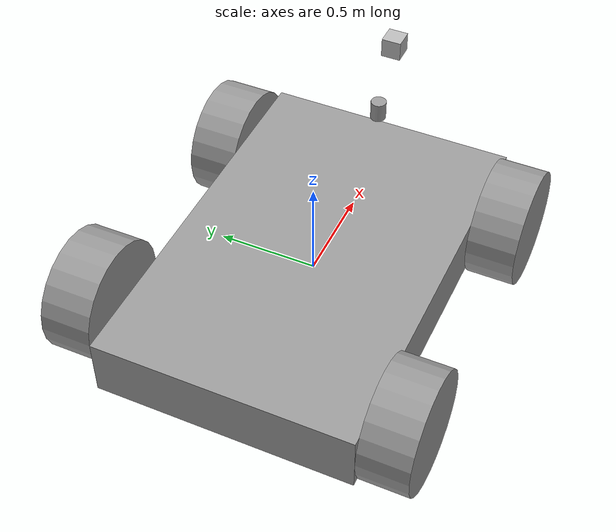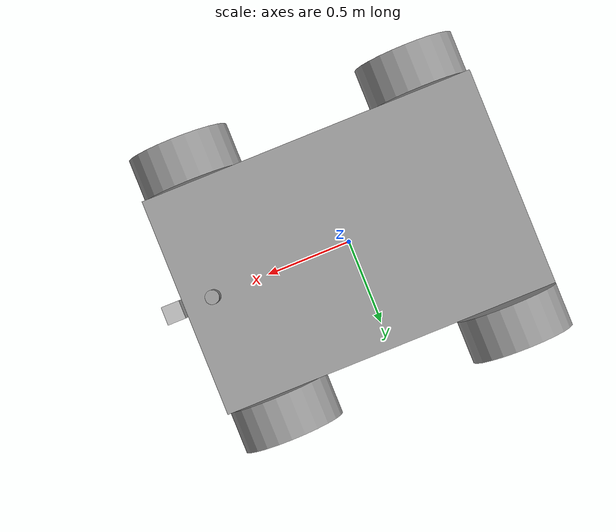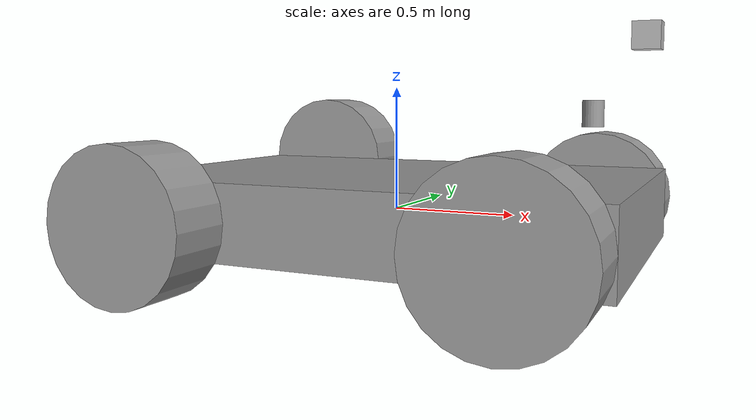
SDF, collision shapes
<?xml version='1.0'?>
<sdf version='1.7'>
  <model name='my_vehicle'>
    <link name='link'>
      <inertial>
        <mass>1</mass>
        <inertia>
          <ixx>0.166667</ixx>
          <ixy>0</ixy>
          <ixz>0</ixz>
          <iyy>0.166667</iyy>
          <iyz>0</iyz>
          <izz>0.166667</izz>
        </inertia>
        <pose>0 0 0 0 -0 0</pose>
      </inertial>
      <self_collide>0</self_collide>
      <enable_wind>0</enable_wind>
      <kinematic>0</kinematic>
      <pose>0 0 0 -0 -0 -0</pose>
      <gravity>1</gravity>
      <visual name='visual'>
        <geometry>
          <mesh>
            <uri>model://pioneer2dx/meshes/chassis.dae</uri>
            <scale>4 4 4</scale>
          </mesh>
        </geometry>
        <material>
          <script>
            <name>Gazebo/Grey</name>
            <uri>file://media/materials/scripts/gazebo.material</uri>
          </script>
          <shader type='pixel'>
            <normal_map>__default__</normal_map>
          </shader>
          <ambient>0.3 0.3 0.3 1</ambient>
          <diffuse>0.7 0.7 0.7 1</diffuse>
          <specular>0.01 0.01 0.01 1</specular>
          <emissive>0 0 0 1</emissive>
        </material>
        <pose>0 0 0 0 -0 0</pose>
        <transparency>0</transparency>
        <cast_shadows>1</cast_shadows>
      </visual>
      <collision name='collision'>
        <laser_retro>0</laser_retro>
        <max_contacts>10</max_contacts>
        <pose>0 0 0 0 -0 0</pose>
        <geometry>
          <box>
            <size>2 1.3 0.3</size>
          </box>
        </geometry>
        <surface>
          <friction>
            <ode>
              <mu>1</mu>
              <mu2>1</mu2>
              <fdir1>0 0 0</fdir1>
              <slip1>0</slip1>
              <slip2>0</slip2>
            </ode>
            <torsional>
              <coefficient>1</coefficient>
              <patch_radius>0</patch_radius>
              <surface_radius>0</surface_radius>
              <use_patch_radius>1</use_patch_radius>
              <ode>
                <slip>0</slip>
              </ode>
            </torsional>
          </friction>
          <bounce>
            <restitution_coefficient>0</restitution_coefficient>
            <threshold>1e+06</threshold>
          </bounce>
          <contact>
            <collide_without_contact>0</collide_without_contact>
            <collide_without_contact_bitmask>1</collide_without_contact_bitmask>
            <collide_bitmask>1</collide_bitmask>
            <ode>
              <soft_cfm>0</soft_cfm>
              <soft_erp>0.2</soft_erp>
              <kp>1e+13</kp>
              <kd>1</kd>
              <max_vel>0.01</max_vel>
              <min_depth>0</min_depth>
            </ode>
            <bullet>
              <split_impulse>1</split_impulse>
              <split_impulse_penetration_threshold>-0.01</split_impulse_penetration_threshold>
              <soft_cfm>0</soft_cfm>
              <soft_erp>0.2</soft_erp>
              <kp>1e+13</kp>
              <kd>1</kd>
            </bullet>
          </contact>
        </surface>
      </collision>
      <plugin name='skid_steer_drive_controller' filename='libgazebo_ros_skid_steer_drive.so'>
        <updateRate>5.0</updateRate>
        <robotNamespace>/</robotNamespace>
        <leftFrontJoint>front_left_wheel_joint</leftFrontJoint>
        <rightFrontJoint>front_right_wheel_joint</rightFrontJoint>
        <leftRearJoint>rear_left_wheel_joint</leftRearJoint>
        <rightRearJoint>rear_right_wheel_joint</rightRearJoint>
        <wheelSeparation>1.5</wheelSeparation>
        <wheelDiameter>0.6</wheelDiameter>
        <robotBaseFrame>link</robotBaseFrame>
        <torque>20</torque>
        <topicName>cmd_vel</topicName>
        <broadcastTF>0</broadcastTF>
      </plugin>
    </link>
    <link name='link_0'>
      <inertial>
        <mass>1</mass>
        <inertia>
          <ixx>0.145833</ixx>
          <ixy>0</ixy>
          <ixz>0</ixz>
          <iyy>0.145833</iyy>
          <iyz>0</iyz>
          <izz>0.125</izz>
        </inertia>
        <pose>0 0 0 1.5707 -0 0</pose>
      </inertial>
      <pose>-0.7 0.775029 0.150013 1e-05 -0 0</pose>
      <gravity>1</gravity>
      <self_collide>0</self_collide>
      <kinematic>0</kinematic>
      <enable_wind>0</enable_wind>
      <visual name='visual'>
        <pose>0 0 0 1.5707 -0 0</pose>
        <geometry>
          <cylinder>
            <radius>0.3</radius>
            <length>0.25</length>
          </cylinder>
        </geometry>
        <material>
          <lighting>1</lighting>
          <script>
            <uri>file://media/materials/scripts/gazebo.material</uri>
            <name>Gazebo/Grey</name>
          </script>
          <shader type='pixel'>
            <normal_map>__default__</normal_map>
          </shader>
          <ambient>0.3 0.3 0.3 1</ambient>
          <diffuse>0.7 0.7 0.7 1</diffuse>
          <specular>0.01 0.01 0.01 1</specular>
          <emissive>0 0 0 1</emissive>
        </material>
        <transparency>0</transparency>
        <cast_shadows>1</cast_shadows>
      </visual>
      <collision name='collision'>
        <laser_retro>0</laser_retro>
        <max_contacts>10</max_contacts>
        <pose>0 0 0 1.5707 -0 0</pose>
        <geometry>
          <cylinder>
            <radius>0.3</radius>
            <length>0.25</length>
          </cylinder>
        </geometry>
        <surface>
          <friction>
            <ode>
              <mu>1</mu>
              <mu2>1</mu2>
              <fdir1>0 0 0</fdir1>
              <slip1>0</slip1>
              <slip2>0</slip2>
            </ode>
            <torsional>
              <coefficient>1</coefficient>
              <patch_radius>0</patch_radius>
              <surface_radius>0</surface_radius>
              <use_patch_radius>1</use_patch_radius>
              <ode>
                <slip>0</slip>
              </ode>
            </torsional>
          </friction>
          <bounce>
            <restitution_coefficient>0</restitution_coefficient>
            <threshold>1e+06</threshold>
          </bounce>
          <contact>
            <collide_without_contact>0</collide_without_contact>
            <collide_without_contact_bitmask>1</collide_without_contact_bitmask>
            <collide_bitmask>1</collide_bitmask>
            <ode>
              <soft_cfm>0</soft_cfm>
              <soft_erp>0.2</soft_erp>
              <kp>1e+13</kp>
              <kd>1</kd>
              <max_vel>0.01</max_vel>
              <min_depth>0</min_depth>
            </ode>
            <bullet>
              <split_impulse>1</split_impulse>
              <split_impulse_penetration_threshold>-0.01</split_impulse_penetration_threshold>
              <soft_cfm>0</soft_cfm>
              <soft_erp>0.2</soft_erp>
              <kp>1e+13</kp>
              <kd>1</kd>
            </bullet>
          </contact>
        </surface>
      </collision>
    </link>
    <link name='link_0_0'>
      <inertial>
        <mass>1</mass>
        <inertia>
          <ixx>0.145833</ixx>
          <ixy>0</ixy>
          <ixz>0</ixz>
          <iyy>0.145833</iyy>
          <iyz>0</iyz>
          <izz>0.125</izz>
        </inertia>
        <pose>0 0 0 0 -0 0</pose>
      </inertial>
      <pose>0.8 0 0.4 2.3e-05 6e-06 0.006341</pose>
      <gravity>1</gravity>
      <self_collide>0</self_collide>
      <kinematic>0</kinematic>
      <enable_wind>0</enable_wind>
      <sensor type='ray' name='lidar'>
      <pose>0 0 0 1.5707 0 0 </pose>
      <visualize>true</visualize>
      <update_rate>30</update_rate>
      <ray>
      <scan>
      <horizontal>
      <samples>32</samples>
      <resolution>1</resolution>
      <min_angle>-0.53529248</min_angle>
      <max_angle>0.18622663</max_angle>
      </horizontal>
      </scan>
      <range>
      <min>0.05</min>
      <max>70</max>
      <resolution>0.02</resolution>
      </range>
      </ray>
      <plugin name='gazebo_ros_lidar_publisher' filename='libgazebo_ros_laser.so'>
        <topicName>/my_vehicle/laser/scan</topicName>
        <frameName>lidar_link</frameName>
      </plugin>
      </sensor>
      <visual name='visual'>
        <pose>0 0 0 0 -0 0</pose>
        <geometry>
          <cylinder>
            <radius>0.04</radius>
            <length>0.1</length>
          </cylinder>
        </geometry>
        <material>
          <lighting>1</lighting>
          <script>
            <uri>file://media/materials/scripts/gazebo.material</uri>
            <name>Gazebo/Grey</name>
          </script>
          <shader type='pixel'>
            <normal_map>__default__</normal_map>
          </shader>
          <ambient>0.3 0.3 0.3 1</ambient>
          <diffuse>0.7 0.7 0.7 1</diffuse>
          <specular>0.01 0.01 0.01 1</specular>
          <emissive>0 0 0 1</emissive>
        </material>
        <transparency>0</transparency>
        <cast_shadows>1</cast_shadows>
      </visual>
      <collision name='collision'>
        <laser_retro>0</laser_retro>
        <max_contacts>10</max_contacts>
        <pose>0 0 0 0 -0 0</pose>
        <geometry>
          <cylinder>
            <radius>0.04</radius>
            <length>0.1</length>
          </cylinder>
        </geometry>
        <surface>
          <friction>
            <ode>
              <mu>1</mu>
              <mu2>1</mu2>
              <fdir1>0 0 0</fdir1>
              <slip1>0</slip1>
              <slip2>0</slip2>
            </ode>
            <torsional>
              <coefficient>1</coefficient>
              <patch_radius>0</patch_radius>
              <surface_radius>0</surface_radius>
              <use_patch_radius>1</use_patch_radius>
              <ode>
                <slip>0</slip>
              </ode>
            </torsional>
          </friction>
          <bounce>
            <restitution_coefficient>0</restitution_coefficient>
            <threshold>1e+06</threshold>
          </bounce>
          <contact>
            <collide_without_contact>0</collide_without_contact>
            <collide_without_contact_bitmask>1</collide_without_contact_bitmask>
            <collide_bitmask>1</collide_bitmask>
            <ode>
              <soft_cfm>0</soft_cfm>
              <soft_erp>0.2</soft_erp>
              <kp>1e+13</kp>
              <kd>1</kd>
              <max_vel>0.01</max_vel>
              <min_depth>0</min_depth>
            </ode>
            <bullet>
              <split_impulse>1</split_impulse>
              <split_impulse_penetration_threshold>-0.01</split_impulse_penetration_threshold>
              <soft_cfm>0</soft_cfm>
              <soft_erp>0.2</soft_erp>
              <kp>1e+13</kp>
              <kd>1</kd>
            </bullet>
          </contact>
        </surface>
      </collision>
    </link>
    <link name='link_0_clone'>
      <inertial>
        <mass>1</mass>
        <inertia>
          <ixx>0.145833</ixx>
          <ixy>0</ixy>
          <ixz>0</ixz>
          <iyy>0.145833</iyy>
          <iyz>0</iyz>
          <izz>0.125</izz>
        </inertia>
        <pose>0 0 0 1.5707 -0 0</pose>
      </inertial>
      <pose>-0.7 -0.775033 -8e-06 2e-05 -0 0</pose>
      <gravity>1</gravity>
      <self_collide>0</self_collide>
      <kinematic>0</kinematic>
      <enable_wind>0</enable_wind>
      <visual name='visual'>
        <pose>0 0 0 1.5707 -0 0</pose>
        <geometry>
          <cylinder>
            <radius>0.3</radius>
            <length>0.25</length>
          </cylinder>
        </geometry>
        <material>
          <lighting>1</lighting>
          <script>
            <uri>file://media/materials/scripts/gazebo.material</uri>
            <name>Gazebo/Grey</name>
          </script>
          <shader type='pixel'>
            <normal_map>__default__</normal_map>
          </shader>
          <ambient>0.3 0.3 0.3 1</ambient>
          <diffuse>0.7 0.7 0.7 1</diffuse>
          <specular>0.01 0.01 0.01 1</specular>
          <emissive>0 0 0 1</emissive>
        </material>
        <transparency>0</transparency>
        <cast_shadows>1</cast_shadows>
      </visual>
      <collision name='collision'>
        <laser_retro>0</laser_retro>
        <max_contacts>10</max_contacts>
        <pose>0 0 0 1.5707 -0 0</pose>
        <geometry>
          <cylinder>
            <radius>0.3</radius>
            <length>0.25</length>
          </cylinder>
        </geometry>
        <surface>
          <friction>
            <ode>
              <mu>1</mu>
              <mu2>1</mu2>
              <fdir1>0 0 0</fdir1>
              <slip1>0</slip1>
              <slip2>0</slip2>
            </ode>
            <torsional>
              <coefficient>1</coefficient>
              <patch_radius>0</patch_radius>
              <surface_radius>0</surface_radius>
              <use_patch_radius>1</use_patch_radius>
              <ode>
                <slip>0</slip>
              </ode>
            </torsional>
          </friction>
          <bounce>
            <restitution_coefficient>0</restitution_coefficient>
            <threshold>1e+06</threshold>
          </bounce>
          <contact>
            <collide_without_contact>0</collide_without_contact>
            <collide_without_contact_bitmask>1</collide_without_contact_bitmask>
            <collide_bitmask>1</collide_bitmask>
            <ode>
              <soft_cfm>0</soft_cfm>
              <soft_erp>0.2</soft_erp>
              <kp>1e+13</kp>
              <kd>1</kd>
              <max_vel>0.01</max_vel>
              <min_depth>0</min_depth>
            </ode>
            <bullet>
              <split_impulse>1</split_impulse>
              <split_impulse_penetration_threshold>-0.01</split_impulse_penetration_threshold>
              <soft_cfm>0</soft_cfm>
              <soft_erp>0.2</soft_erp>
              <kp>1e+13</kp>
              <kd>1</kd>
            </bullet>
          </contact>
        </surface>
      </collision>
    </link>
    <link name='link_0_clone_0'>
      <inertial>
        <mass>1</mass>
        <inertia>
          <ixx>0.145833</ixx>
          <ixy>0</ixy>
          <ixz>0</ixz>
          <iyy>0.145833</iyy>
          <iyz>0</iyz>
          <izz>0.125</izz>
        </inertia>
        <pose>0 0 0 1.5707 -0 0</pose>
      </inertial>
      <pose>0.7 0.775033 8e-06 2e-05 -0 0</pose>
      <gravity>1</gravity>
      <self_collide>0</self_collide>
      <kinematic>0</kinematic>
      <enable_wind>0</enable_wind>
      <visual name='visual'>
        <pose>0 0 0 1.5707 -0 0</pose>
        <geometry>
          <cylinder>
            <radius>0.3</radius>
            <length>0.25</length>
          </cylinder>
        </geometry>
        <material>
          <lighting>1</lighting>
          <script>
            <uri>file://media/materials/scripts/gazebo.material</uri>
            <name>Gazebo/Grey</name>
          </script>
          <shader type='pixel'>
            <normal_map>__default__</normal_map>
          </shader>
          <ambient>0.3 0.3 0.3 1</ambient>
          <diffuse>0.7 0.7 0.7 1</diffuse>
          <specular>0.01 0.01 0.01 1</specular>
          <emissive>0 0 0 1</emissive>
        </material>
        <transparency>0</transparency>
        <cast_shadows>1</cast_shadows>
      </visual>
      <collision name='collision'>
        <laser_retro>0</laser_retro>
        <max_contacts>10</max_contacts>
        <pose>0 0 0 1.5707 -0 0</pose>
        <geometry>
          <cylinder>
            <radius>0.3</radius>
            <length>0.25</length>
          </cylinder>
        </geometry>
        <surface>
          <friction>
            <ode>
              <mu>1</mu>
              <mu2>1</mu2>
              <fdir1>0 0 0</fdir1>
              <slip1>0</slip1>
              <slip2>0</slip2>
            </ode>
            <torsional>
              <coefficient>1</coefficient>
              <patch_radius>0</patch_radius>
              <surface_radius>0</surface_radius>
              <use_patch_radius>1</use_patch_radius>
              <ode>
                <slip>0</slip>
              </ode>
            </torsional>
          </friction>
          <bounce>
            <restitution_coefficient>0</restitution_coefficient>
            <threshold>1e+06</threshold>
          </bounce>
          <contact>
            <collide_without_contact>0</collide_without_contact>
            <collide_without_contact_bitmask>1</collide_without_contact_bitmask>
            <collide_bitmask>1</collide_bitmask>
            <ode>
              <soft_cfm>0</soft_cfm>
              <soft_erp>0.2</soft_erp>
              <kp>1e+13</kp>
              <kd>1</kd>
              <max_vel>0.01</max_vel>
              <min_depth>0</min_depth>
            </ode>
            <bullet>
              <split_impulse>1</split_impulse>
              <split_impulse_penetration_threshold>-0.01</split_impulse_penetration_threshold>
              <soft_cfm>0</soft_cfm>
              <soft_erp>0.2</soft_erp>
              <kp>1e+13</kp>
              <kd>1</kd>
            </bullet>
          </contact>
        </surface>
      </collision>
    </link>
    <link name='link_0_clone_1'>
      <inertial>
        <mass>1</mass>
        <inertia>
          <ixx>0.145833</ixx>
          <ixy>0</ixy>
          <ixz>0</ixz>
          <iyy>0.145833</iyy>
          <iyz>0</iyz>
          <izz>0.125</izz>
        </inertia>
        <pose>0 0 0 1.5707 -0 0</pose>
      </inertial>
      <pose>0.7 -0.775033 -8e-06 2e-05 -0 0</pose>
      <gravity>1</gravity>
      <self_collide>0</self_collide>
      <kinematic>0</kinematic>
      <enable_wind>0</enable_wind>
      <visual name='visual'>
        <pose>0 0 0 1.5707 -0 0</pose>
        <geometry>
          <cylinder>
            <radius>0.3</radius>
            <length>0.25</length>
          </cylinder>
        </geometry>
        <material>
          <lighting>1</lighting>
          <script>
            <uri>file://media/materials/scripts/gazebo.material</uri>
            <name>Gazebo/Grey</name>
          </script>
          <shader type='pixel'>
            <normal_map>__default__</normal_map>
          </shader>
          <ambient>0.3 0.3 0.3 1</ambient>
          <diffuse>0.7 0.7 0.7 1</diffuse>
          <specular>0.01 0.01 0.01 1</specular>
          <emissive>0 0 0 1</emissive>
        </material>
        <transparency>0</transparency>
        <cast_shadows>1</cast_shadows>
      </visual>
      <collision name='collision'>
        <laser_retro>0</laser_retro>
        <max_contacts>10</max_contacts>
        <pose>0 0 0 1.5707 -0 0</pose>
        <geometry>
          <cylinder>
            <radius>0.3</radius>
            <length>0.25</length>
          </cylinder>
        </geometry>
        <surface>
          <friction>
            <ode>
              <mu>1</mu>
              <mu2>1</mu2>
              <fdir1>0 0 0</fdir1>
              <slip1>0</slip1>
              <slip2>0</slip2>
            </ode>
            <torsional>
              <coefficient>1</coefficient>
              <patch_radius>0</patch_radius>
              <surface_radius>0</surface_radius>
              <use_patch_radius>1</use_patch_radius>
              <ode>
                <slip>0</slip>
              </ode>
            </torsional>
          </friction>
          <bounce>
            <restitution_coefficient>0</restitution_coefficient>
            <threshold>1e+06</threshold>
          </bounce>
          <contact>
            <collide_without_contact>0</collide_without_contact>
            <collide_without_contact_bitmask>1</collide_without_contact_bitmask>
            <collide_bitmask>1</collide_bitmask>
            <ode>
              <soft_cfm>0</soft_cfm>
              <soft_erp>0.2</soft_erp>
              <kp>1e+13</kp>
              <kd>1</kd>
              <max_vel>0.01</max_vel>
              <min_depth>0</min_depth>
            </ode>
            <bullet>
              <split_impulse>1</split_impulse>
              <split_impulse_penetration_threshold>-0.01</split_impulse_penetration_threshold>
              <soft_cfm>0</soft_cfm>
              <soft_erp>0.2</soft_erp>
              <kp>1e+13</kp>
              <kd>1</kd>
            </bullet>
          </contact>
        </surface>
      </collision>
    </link>
    <model name='depth_camera'>
      <link name='link'>
        <pose>0 0 0.05 0 -0 0</pose>
        <inertial>
          <mass>0.1</mass>
          <inertia>
            <ixx>0.000166667</ixx>
            <iyy>0.000166667</iyy>
            <izz>0.000166667</izz>
            <ixy>0</ixy>
            <ixz>0</ixz>
            <iyz>0</iyz>
          </inertia>
          <pose>0 0 0 0 -0 0</pose>
        </inertial>
        <collision name='collision'>
          <geometry>
            <box>
              <size>0.1 0.1 0.1</size>
            </box>
          </geometry>
          <max_contacts>10</max_contacts>
          <surface>
            <contact>
              <ode/>
            </contact>
            <bounce/>
            <friction>
              <torsional>
                <ode/>
              </torsional>
              <ode/>
            </friction>
          </surface>
        </collision>
        <visual name='visual'>
          <geometry>
            <box>
              <size>0.1 0.1 0.1</size>
            </box>
          </geometry>
        </visual>
        <sensor name='camera' type='depth'>
          <camera>
            <horizontal_fov>1.047</horizontal_fov>
            <image>
              <width>320</width>
              <height>240</height>
            </image>
            <clip>
              <near>0.1</near>
              <far>100</far>
            </clip>
          </camera>
          <plugin name='camera_plugin' filename='libgazebo_ros_openni_kinect.so'>
            <baseline>0.2</baseline>
            <alwaysOn>1</alwaysOn>
            <updateRate>0.0</updateRate>
            <cameraName>camera_ir</cameraName>
            <imageTopicName>/camera/color/image_raw</imageTopicName>
            <cameraInfoTopicName>/camera/color/camera_info</cameraInfoTopicName>
            <depthImageTopicName>/camera/depth/image_raw</depthImageTopicName>
            <depthImageCameraInfoTopicName>/camera/depth/camera_info</depthImageCameraInfoTopicName>
            <pointCloudTopicName>/camera/depth/points</pointCloudTopicName>
            <frameName>camera_link</frameName>
            <pointCloudCutoff>0.5</pointCloudCutoff>
            <pointCloudCutoffMax>3.0</pointCloudCutoffMax>
            <distortionK1>0</distortionK1>
            <distortionK2>0</distortionK2>
            <distortionK3>0</distortionK3>
            <distortionT1>0</distortionT1>
            <distortionT2>0</distortionT2>
            <CxPrime>0</CxPrime>
            <Cx>0</Cx>
            <Cy>0</Cy>
            <focalLength>0</focalLength>
            <hackBaseline>0</hackBaseline>
          </plugin>
          <always_on>1</always_on>
          <update_rate>30</update_rate>
          <visualize>1</visualize>
        </sensor>
        <self_collide>0</self_collide>
        <enable_wind>0</enable_wind>
        <kinematic>0</kinematic>
      </link>
      <pose>0.986301 9.1e-05 0.629304 -0 -0 -0</pose>
    </model>
    <joint name='front_left_wheel_joint' type='revolute'>
      <parent>link</parent>
      <child>link_0_clone_0</child>
      <pose>0 0 0 0 -0 0</pose>
      <axis>
        <xyz>0 0 -1</xyz>
        <limit>
          <lower>-1.79769e+308</lower>
          <upper>1.79769e+308</upper>
          <effort>-1</effort>
          <velocity>-1</velocity>
        </limit>
        <dynamics>
          <spring_reference>0</spring_reference>
          <spring_stiffness>0</spring_stiffness>
          <damping>0</damping>
          <friction>0</friction>
        </dynamics>
      </axis>
      <physics>
        <ode>
          <limit>
            <cfm>0</cfm>
            <erp>0.2</erp>
          </limit>
          <suspension>
            <cfm>0</cfm>
            <erp>0.2</erp>
          </suspension>
        </ode>
      </physics>
    </joint>
    <joint name='front_right_wheel_joint' type='revolute'>
      <parent>link</parent>
      <child>link_0_clone_1</child>
      <pose>0 0 0 0 -0 0</pose>
      <axis>
        <xyz>0 0 -1</xyz>
        <limit>
          <lower>-1.79769e+308</lower>
          <upper>1.79769e+308</upper>
          <effort>-1</effort>
          <velocity>-1</velocity>
        </limit>
        <dynamics>
          <spring_reference>0</spring_reference>
          <spring_stiffness>0</spring_stiffness>
          <damping>0</damping>
          <friction>0</friction>
        </dynamics>
      </axis>
      <physics>
        <ode>
          <limit>
            <cfm>0</cfm>
            <erp>0.2</erp>
          </limit>
          <suspension>
            <cfm>0</cfm>
            <erp>0.2</erp>
          </suspension>
        </ode>
      </physics>
    </joint>
    <joint name='link_JOINT_0' type='fixed'>
      <parent>link</parent>
      <child>depth_camera::link</child>
      <pose>0 0 0 0 -0 0</pose>
      <physics>
        <ode>
          <limit>
            <cfm>0</cfm>
            <erp>0.2</erp>
          </limit>
          <suspension>
            <cfm>0</cfm>
            <erp>0.2</erp>
          </suspension>
        </ode>
      </physics>
    </joint>
    <joint name='link_JOINT_1_0' type='fixed'>
      <parent>link</parent>
      <child>link_0_0</child>
      <pose>0 0 0 0 -0 0</pose>
      <physics>
        <ode>
          <limit>
            <cfm>0</cfm>
            <erp>0.2</erp>
          </limit>
          <suspension>
            <cfm>0</cfm>
            <erp>0.2</erp>
          </suspension>
        </ode>
      </physics>
    </joint>
    <joint name='rear_left_wheel_joint' type='revolute'>
      <parent>link</parent>
      <child>link_0</child>
      <pose>0 0 0 0 -0 0</pose>
      <axis>
        <xyz>0 0 -1</xyz>
        <limit>
          <lower>-1.79769e+308</lower>
          <upper>1.79769e+308</upper>
          <effort>-1</effort>
          <velocity>-1</velocity>
        </limit>
        <dynamics>
          <spring_reference>0</spring_reference>
          <spring_stiffness>0</spring_stiffness>
          <damping>0</damping>
          <friction>0</friction>
        </dynamics>
      </axis>
      <physics>
        <ode>
          <limit>
            <cfm>0</cfm>
            <erp>0.2</erp>
          </limit>
          <suspension>
            <cfm>0</cfm>
            <erp>0.2</erp>
          </suspension>
        </ode>
      </physics>
    </joint>
    <joint name='rear_right_wheel_joint' type='revolute'>
      <parent>link</parent>
      <child>link_0_clone</child>
      <pose>0 0 0 0 -0 0</pose>
      <axis>
        <xyz>0 0 -1</xyz>
        <limit>
          <lower>-1.79769e+308</lower>
          <upper>1.79769e+308</upper>
          <effort>-1</effort>
          <velocity>-1</velocity>
        </limit>
        <dynamics>
          <spring_reference>0</spring_reference>
          <spring_stiffness>0</spring_stiffness>
          <damping>0</damping>
          <friction>0</friction>
        </dynamics>
      </axis>
      <physics>
        <ode>
          <limit>
            <cfm>0</cfm>
            <erp>0.2</erp>
          </limit>
          <suspension>
            <cfm>0</cfm>
            <erp>0.2</erp>
          </suspension>
        </ode>
      </physics>
    </joint>
    <static>0</static>
    <allow_auto_disable>1</allow_auto_disable>
  </model>
</sdf>
